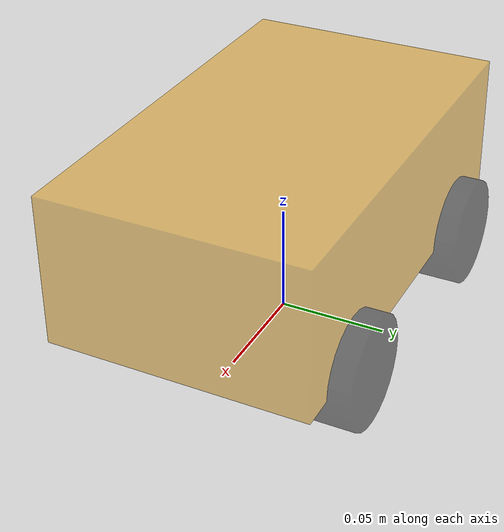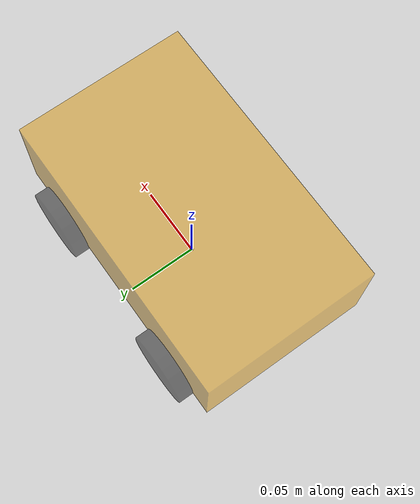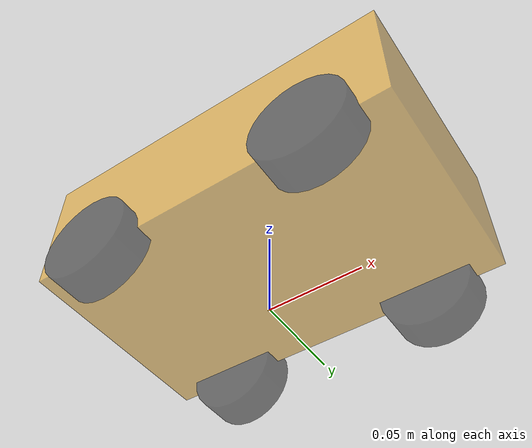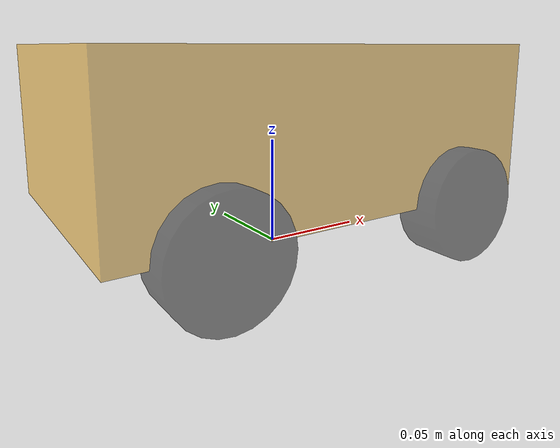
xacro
<!-- 底盘实现 -->
<robot xmlns:xacro="http://wiki.ros.org/xacro">

  <!-- 声明变量 -->
  <xacro:property name="PI" value="3.1415927"/>

  <xacro:property name="car_length" value="0.2"/>
  <xacro:property name="car_width" value="0.12"/>
  <xacro:property name="car_height" value="0.07"/>

  <xacro:property name="wheel_radius" value="0.025"/>
  <xacro:property name="wheel_length" value="0.02"/>

  <!-- 离地间距 0.025+0.035=0.06 -->
  <xacro:property name="distance" value="${wheel_radius + car_height / 2}"/>

  <!-- 车轮偏移 -->
  <xacro:property name="wheel_offset" value="0.06"/>

  <!-- set color -->
  <material name="yellow">
    <color rgba="0.9 0.6 0.0 0.5"/>
  </material>
  <material name="black">
    <color rgba="0.0 0.0 0.0 0.5"/>
  </material>
  <material name="red">
    <color rgba="0.8 0.1 0.1 0.8"/>
  </material>
  <material name="pink">
    <color rgba="0.4 0.2 0.6 0.8"/>
  </material>

  <!-- set base_footprint -->
  <link name="base_footprint">
    <visual>
      <geometry>
        <sphere radius="0.001"/>
      </geometry>
    </visual>
  </link>

  <!-- set base_link -->
  <link name="base_link">
    <visual>
      <geometry>
        <box size="${car_length} ${car_width} ${car_height}"/>
      </geometry>
      <material name="yellow"/>
    </visual>
  </link>

  <!-- 关联 base_link 和 base_footprint -->
  <joint name="base_link2base_footprint" type="fixed">
    <parent link="base_footprint"/>
    <child link="base_link"/>
    <origin xyz="0.0 0.0 ${distance}"/>
  </joint>

  <!-- 定义车轮宏(创建车轮, 和车轮关节 -->
  <xacro:macro name="wheel_create" params="wheel_name is_front is_left">
    <!-- 创建车轮 -->
    <link name="${wheel_name}">
      <visual>
        <!-- 设置形状 -->
        <geometry>
          <cylinder radius="${wheel_radius}" length="${wheel_length}"/>
        </geometry>
        <!-- 角度设置偏移 -->
        <origin rpy="${PI / 2} 0 0"/>
        <!-- 设置颜色 -->
        <material name="black"/>
      </visual>
    </link>
    <!-- 配置关节 -->
    <joint name="${wheel_name}_to_baselink" type="continuous">
      <origin xyz="${wheel_offset * is_front} ${wheel_offset * is_left} -0.035"/>
      <parent link="base_link"/>
      <child link="${wheel_name}"/>
      <axis xyz="0 1 0"/>
    </joint>
  </xacro:macro>

  <!-- 车轮宏调用 -->
  <xacro:wheel_create wheel_name="left_front_wheel" is_front="1" is_left="1"/>
  <xacro:wheel_create wheel_name="right_front_wheel" is_front="1" is_left="-1"/>
  <xacro:wheel_create wheel_name="left_back_wheel" is_front="-1" is_left="1"/>
  <xacro:wheel_create wheel_name="right_back_wheel" is_front="-1" is_left="-1"/>
</robot>
